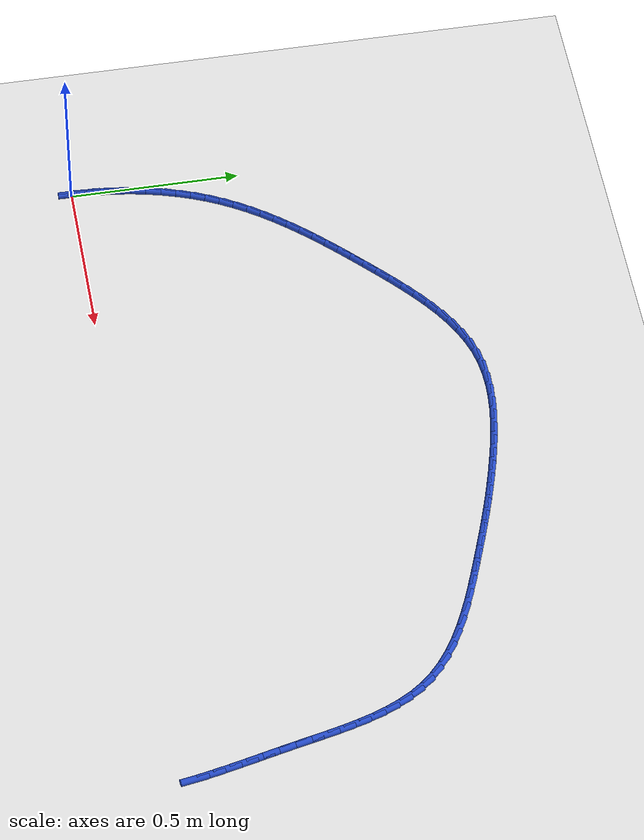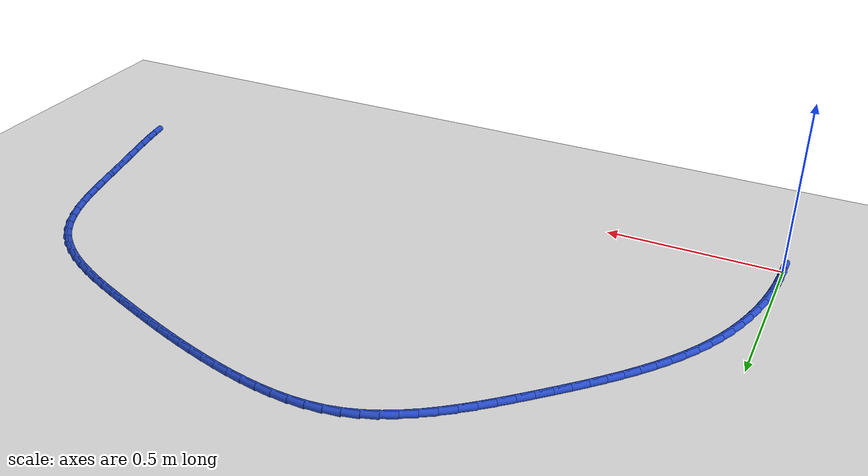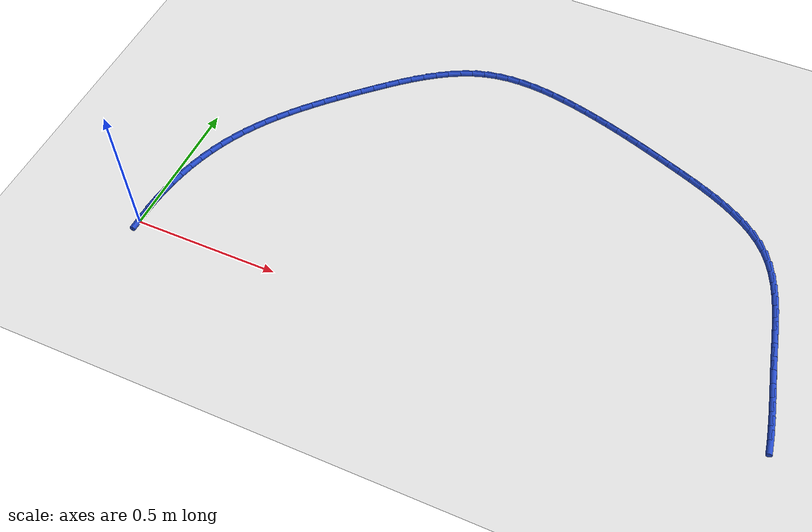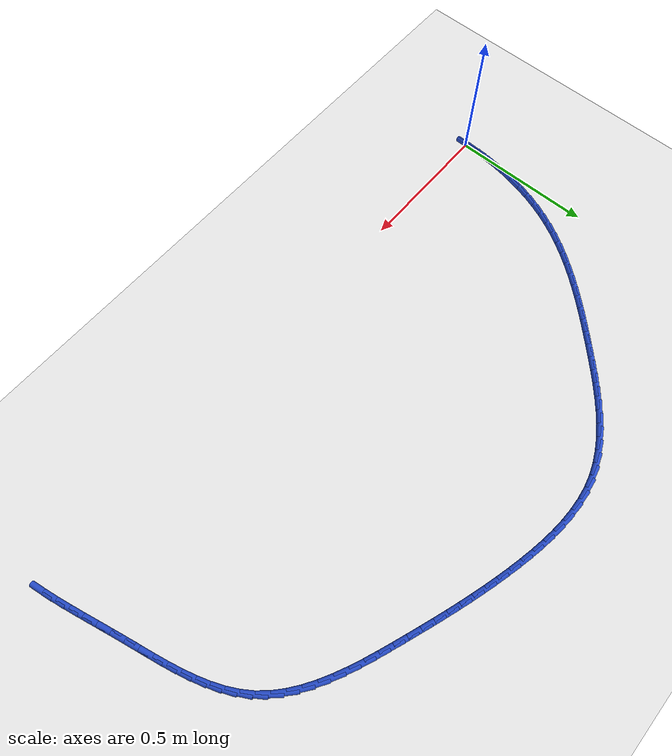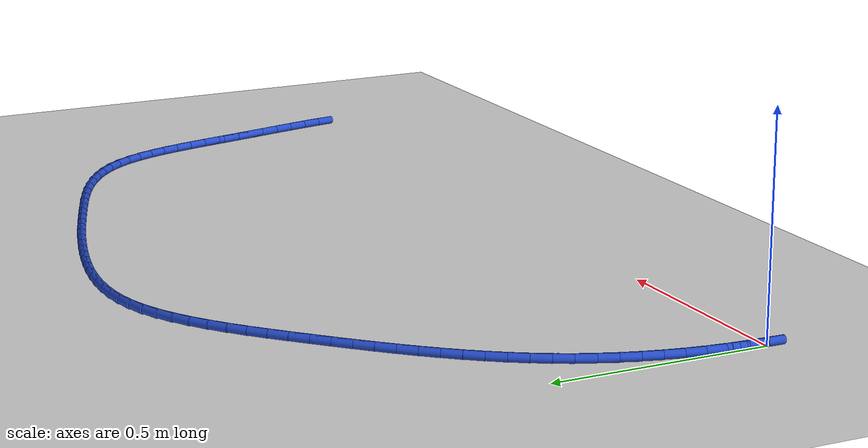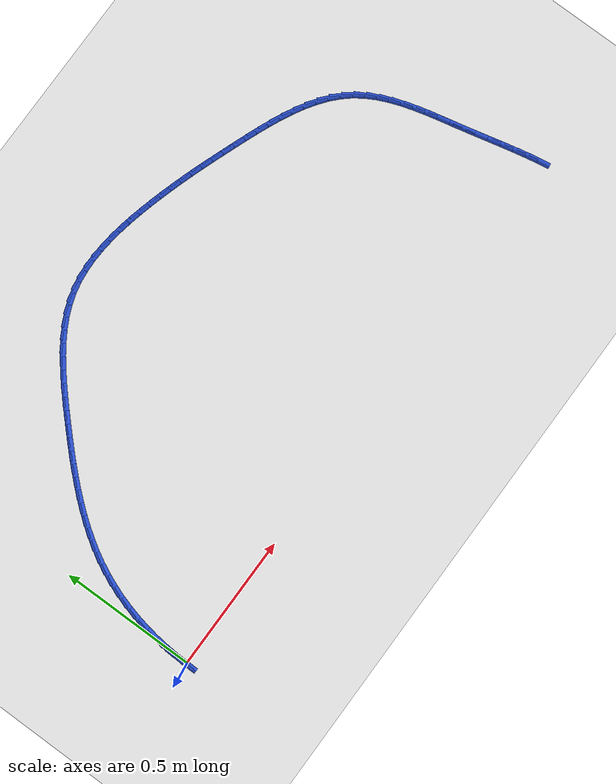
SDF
<sdf version="1.6">
 <world name="default">
  <model name="ground_plane">
   <static>1</static>
   <link name="link">
    <collision name="collision">
     <geometry><plane><normal>0 0 1</normal><size>100 100</size></plane></geometry>
     <surface><friction><ode><mu>100</mu><mu2>50</mu2></ode></friction></surface>
    </collision>
    <visual name="visual">
     <cast_shadows>0</cast_shadows>
     <geometry><plane><normal>0 0 1</normal><size>100 100</size></plane></geometry>
     <material>
      <script><uri>file://media/materials/scripts/gazebo.material</uri><name>Gazebo/WhiteGlow</name></script>
     </material>
    </visual>
   </link>
  </model>
  <model name="line">
   <link name="link_0">
    <pose>-3.9898639947466563e-17 1.3877787807814457e-16 0.01 0 1.57 1.5505726882024928</pose>
    <collision name="collision">
     <geometry><cylinder><radius>0.01</radius><length>0.08</length></cylinder></geometry>
    </collision>
    <visual name="visual">
     <material>
      <script><name>Gazebo/Blue</name><uri>file://media/materials/scripts/gazebo.material</uri></script>
     </material>
     <geometry><cylinder><radius>0.01</radius><length>0.08</length></cylinder></geometry>
    </visual>
   </link>
   <link name="link_1">
    <pose>0.0009206554277849331 0.04551752176031066 0.01 0 1.57 1.5070919290253075</pose>
    <collision name="collision">
     <geometry><cylinder><radius>0.01</radius><length>0.08</length></cylinder></geometry>
    </collision>
    <visual name="visual">
     <material>
      <script><name>Gazebo/Blue</name><uri>file://media/materials/scripts/gazebo.material</uri></script>
     </material>
     <geometry><cylinder><radius>0.01</radius><length>0.08</length></cylinder></geometry>
    </visual>
   </link>
   <link name="link_2">
    <pose>0.0038193526490129426 0.09095826130630526 0.01 0 1.57 1.4629954658828586</pose>
    <collision name="collision">
     <geometry><cylinder><radius>0.01</radius><length>0.08</length></cylinder></geometry>
    </collision>
    <visual name="visual">
     <material>
      <script><name>Gazebo/Blue</name><uri>file://media/materials/scripts/gazebo.material</uri></script>
     </material>
     <geometry><cylinder><radius>0.01</radius><length>0.08</length></cylinder></geometry>
    </visual>
   </link>
   <link name="link_3">
    <pose>0.00871308299222229 0.13617829830201303 0.01 0 1.57 1.4180398101255904</pose>
    <collision name="collision">
     <geometry><cylinder><radius>0.01</radius><length>0.08</length></cylinder></geometry>
    </collision>
    <visual name="visual">
     <material>
      <script><name>Gazebo/Blue</name><uri>file://media/materials/scripts/gazebo.material</uri></script>
     </material>
     <geometry><cylinder><radius>0.01</radius><length>0.08</length></cylinder></geometry>
    </visual>
   </link>
   <link name="link_4">
    <pose>0.01561883778595127 0.18103371241146296 0.01 0 1.57 1.3719832310797913</pose>
    <collision name="collision">
     <geometry><cylinder><radius>0.01</radius><length>0.08</length></cylinder></geometry>
    </collision>
    <visual name="visual">
     <material>
      <script><name>Gazebo/Blue</name><uri>file://media/materials/scripts/gazebo.material</uri></script>
     </material>
     <geometry><cylinder><radius>0.01</radius><length>0.08</length></cylinder></geometry>
    </visual>
   </link>
   <link name="link_5">
    <pose>0.024553608358738183 0.22538058329868402 0.01 0 1.57 1.3245864769850098</pose>
    <collision name="collision">
     <geometry><cylinder><radius>0.01</radius><length>0.08</length></cylinder></geometry>
    </collision>
    <visual name="visual">
     <material>
      <script><name>Gazebo/Blue</name><uri>file://media/materials/scripts/gazebo.material</uri></script>
     </material>
     <geometry><cylinder><radius>0.01</radius><length>0.08</length></cylinder></geometry>
    </visual>
   </link>
   <link name="link_6">
    <pose>0.035534386039121325 0.26907499062770524 0.01 0 1.57 1.2756146023325243</pose>
    <collision name="collision">
     <geometry><cylinder><radius>0.01</radius><length>0.08</length></cylinder></geometry>
    </collision>
    <visual name="visual">
     <material>
      <script><name>Gazebo/Blue</name><uri>file://media/materials/scripts/gazebo.material</uri></script>
     </material>
     <geometry><cylinder><radius>0.01</radius><length>0.08</length></cylinder></geometry>
    </visual>
   </link>
   <link name="link_7">
    <pose>0.04857816215563901 0.31197301406255573 0.01 0 1.57 1.2248401965241404</pose>
    <collision name="collision">
     <geometry><cylinder><radius>0.01</radius><length>0.08</length></cylinder></geometry>
    </collision>
    <visual name="visual">
     <material>
      <script><name>Gazebo/Blue</name><uri>file://media/materials/scripts/gazebo.material</uri></script>
     </material>
     <geometry><cylinder><radius>0.01</radius><length>0.08</length></cylinder></geometry>
    </visual>
   </link>
   <link name="link_8">
    <pose>0.06370192803682953 0.35393073326726443 0.01 0 1.57 1.1720483300698943</pose>
    <collision name="collision">
     <geometry><cylinder><radius>0.01</radius><length>0.08</length></cylinder></geometry>
    </collision>
    <visual name="visual">
     <material>
      <script><name>Gazebo/Blue</name><uri>file://media/materials/scripts/gazebo.material</uri></script>
     </material>
     <geometry><cylinder><radius>0.01</radius><length>0.08</length></cylinder></geometry>
    </visual>
   </link>
   <link name="link_9">
    <pose>0.08092267501123115 0.3948042279058602 0.01 0 1.57 1.1173778302438921</pose>
    <collision name="collision">
     <geometry><cylinder><radius>0.01</radius><length>0.08</length></cylinder></geometry>
    </collision>
    <visual name="visual">
     <material>
      <script><name>Gazebo/Blue</name><uri>file://media/materials/scripts/gazebo.material</uri></script>
     </material>
     <geometry><cylinder><radius>0.01</radius><length>0.08</length></cylinder></geometry>
    </visual>
   </link>
   <link name="link_10">
    <pose>0.10024797308178825 0.43446390651374334 0.01 0 1.57 1.0642409342038408</pose>
    <collision name="collision">
     <geometry><cylinder><radius>0.01</radius><length>0.08</length></cylinder></geometry>
    </collision>
    <visual name="visual">
     <material>
      <script><name>Gazebo/Blue</name><uri>file://media/materials/scripts/gazebo.material</uri></script>
     </material>
     <geometry><cylinder><radius>0.01</radius><length>0.08</length></cylinder></geometry>
    </visual>
   </link>
   <link name="link_11">
    <pose>0.12158894984292902 0.472926856652802 0.01 0 1.57 1.014983260659657</pose>
    <collision name="collision">
     <geometry><cylinder><radius>0.01</radius><length>0.08</length></cylinder></geometry>
    </collision>
    <visual name="visual">
     <material>
      <script><name>Gazebo/Blue</name><uri>file://media/materials/scripts/gazebo.material</uri></script>
     </material>
     <geometry><cylinder><radius>0.01</radius><length>0.08</length></cylinder></geometry>
    </visual>
   </link>
   <link name="link_12">
    <pose>0.1448002078739327 0.5102961346441228 0.01 0 1.57 0.9699224637296748</pose>
    <collision name="collision">
     <geometry><cylinder><radius>0.01</radius><length>0.08</length></cylinder></geometry>
    </collision>
    <visual name="visual">
     <material>
      <script><name>Gazebo/Blue</name><uri>file://media/materials/scripts/gazebo.material</uri></script>
     </material>
     <geometry><cylinder><radius>0.01</radius><length>0.08</length></cylinder></geometry>
    </visual>
   </link>
   <link name="link_13">
    <pose>0.16973563342055176 0.5466758862787258 0.01 0 1.57 0.9292327381509493</pose>
    <collision name="collision">
     <geometry><cylinder><radius>0.01</radius><length>0.08</length></cylinder></geometry>
    </collision>
    <visual name="visual">
     <material>
      <script><name>Gazebo/Blue</name><uri>file://media/materials/scripts/gazebo.material</uri></script>
     </material>
     <geometry><cylinder><radius>0.01</radius><length>0.08</length></cylinder></geometry>
    </visual>
   </link>
   <link name="link_14">
    <pose>0.1962491127285387 0.5821702573476304 0.01 0 1.57 0.8929905282355495</pose>
    <collision name="collision">
     <geometry><cylinder><radius>0.01</radius><length>0.08</length></cylinder></geometry>
    </collision>
    <visual name="visual">
     <material>
      <script><name>Gazebo/Blue</name><uri>file://media/materials/scripts/gazebo.material</uri></script>
     </material>
     <geometry><cylinder><radius>0.01</radius><length>0.08</length></cylinder></geometry>
    </visual>
   </link>
   <link name="link_15">
    <pose>0.22419453204364614 0.6168833936418564 0.01 0 1.57 0.8611971430155317</pose>
    <collision name="collision">
     <geometry><cylinder><radius>0.01</radius><length>0.08</length></cylinder></geometry>
    </collision>
    <visual name="visual">
     <material>
      <script><name>Gazebo/Blue</name><uri>file://media/materials/scripts/gazebo.material</uri></script>
     </material>
     <geometry><cylinder><radius>0.01</radius><length>0.08</length></cylinder></geometry>
    </visual>
   </link>
   <link name="link_16">
    <pose>0.25342577761162655 0.6509194409524238 0.01 0 1.57 0.8338007058977134</pose>
    <collision name="collision">
     <geometry><cylinder><radius>0.01</radius><length>0.08</length></cylinder></geometry>
    </collision>
    <visual name="visual">
     <material>
      <script><name>Gazebo/Blue</name><uri>file://media/materials/scripts/gazebo.material</uri></script>
     </material>
     <geometry><cylinder><radius>0.01</radius><length>0.08</length></cylinder></geometry>
    </visual>
   </link>
   <link name="link_17">
    <pose>0.2837967356782323 0.684382545070352 0.01 0 1.57 0.8107156036488731</pose>
    <collision name="collision">
     <geometry><cylinder><radius>0.01</radius><length>0.08</length></cylinder></geometry>
    </collision>
    <visual name="visual">
     <material>
      <script><name>Gazebo/Blue</name><uri>file://media/materials/scripts/gazebo.material</uri></script>
     </material>
     <geometry><cylinder><radius>0.01</radius><length>0.08</length></cylinder></geometry>
    </visual>
   </link>
   <link name="link_18">
    <pose>0.3151612924892162 0.7173768517866611 0.01 0 1.57 0.79183857983386</pose>
    <collision name="collision">
     <geometry><cylinder><radius>0.01</radius><length>0.08</length></cylinder></geometry>
    </collision>
    <visual name="visual">
     <material>
      <script><name>Gazebo/Blue</name><uri>file://media/materials/scripts/gazebo.material</uri></script>
     </material>
     <geometry><cylinder><radius>0.01</radius><length>0.08</length></cylinder></geometry>
    </visual>
   </link>
   <link name="link_19">
    <pose>0.34737333429033057 0.7500065068923707 0.01 0 1.57 0.777061310153667</pose>
    <collision name="collision">
     <geometry><cylinder><radius>0.01</radius><length>0.08</length></cylinder></geometry>
    </collision>
    <visual name="visual">
     <material>
      <script><name>Gazebo/Blue</name><uri>file://media/materials/scripts/gazebo.material</uri></script>
     </material>
     <geometry><cylinder><radius>0.01</radius><length>0.08</length></cylinder></geometry>
    </visual>
   </link>
   <link name="link_20">
    <pose>0.38028674732732776 0.7823756561785002 0.01 0 1.57 0.7662797052062409</pose>
    <collision name="collision">
     <geometry><cylinder><radius>0.01</radius><length>0.08</length></cylinder></geometry>
    </collision>
    <visual name="visual">
     <material>
      <script><name>Gazebo/Blue</name><uri>file://media/materials/scripts/gazebo.material</uri></script>
     </material>
     <geometry><cylinder><radius>0.01</radius><length>0.08</length></cylinder></geometry>
    </visual>
   </link>
   <link name="link_21">
    <pose>0.4137554178459606 0.8145884454360701 0.01 0 1.57 0.7586854684292571</pose>
    <collision name="collision">
     <geometry><cylinder><radius>0.01</radius><length>0.08</length></cylinder></geometry>
    </collision>
    <visual name="visual">
     <material>
      <script><name>Gazebo/Blue</name><uri>file://media/materials/scripts/gazebo.material</uri></script>
     </material>
     <geometry><cylinder><radius>0.01</radius><length>0.08</length></cylinder></geometry>
    </visual>
   </link>
   <link name="link_22">
    <pose>0.44764758871385396 0.8467166154773756 0.01 0 1.57 0.747073268192079</pose>
    <collision name="collision">
     <geometry><cylinder><radius>0.01</radius><length>0.08</length></cylinder></geometry>
    </collision>
    <visual name="visual">
     <material>
      <script><name>Gazebo/Blue</name><uri>file://media/materials/scripts/gazebo.material</uri></script>
     </material>
     <geometry><cylinder><radius>0.01</radius><length>0.08</length></cylinder></geometry>
    </visual>
   </link>
   <link name="link_23">
    <pose>0.48197476527166083 0.8785085429255888 0.01 0 1.57 0.7272052929547193</pose>
    <collision name="collision">
     <geometry><cylinder><radius>0.01</radius><length>0.08</length></cylinder></geometry>
    </collision>
    <visual name="visual">
     <material>
      <script><name>Gazebo/Blue</name><uri>file://media/materials/scripts/gazebo.material</uri></script>
     </material>
     <geometry><cylinder><radius>0.01</radius><length>0.08</length></cylinder></geometry>
    </visual>
   </link>
   <link name="link_24">
    <pose>0.5168307701794242 0.9095268022697054 0.01 0 1.57 0.6986937696179193</pose>
    <collision name="collision">
     <geometry><cylinder><radius>0.01</radius><length>0.08</length></cylinder></geometry>
    </collision>
    <visual name="visual">
     <material>
      <script><name>Gazebo/Blue</name><uri>file://media/materials/scripts/gazebo.material</uri></script>
     </material>
     <geometry><cylinder><radius>0.01</radius><length>0.08</length></cylinder></geometry>
    </visual>
   </link>
   <link name="link_25">
    <pose>0.5523104078257103 0.9393317520949986 0.01 0 1.57 0.6610077217699959</pose>
    <collision name="collision">
     <geometry><cylinder><radius>0.01</radius><length>0.08</length></cylinder></geometry>
    </collision>
    <visual name="visual">
     <material>
      <script><name>Gazebo/Blue</name><uri>file://media/materials/scripts/gazebo.material</uri></script>
     </material>
     <geometry><cylinder><radius>0.01</radius><length>0.08</length></cylinder></geometry>
    </visual>
   </link>
   <link name="link_26">
    <pose>0.5885084825990841 0.9674837509867407 0.01 0 1.57 0.613467626079441</pose>
    <collision name="collision">
     <geometry><cylinder><radius>0.01</radius><length>0.08</length></cylinder></geometry>
    </collision>
    <visual name="visual">
     <material>
      <script><name>Gazebo/Blue</name><uri>file://media/materials/scripts/gazebo.material</uri></script>
     </material>
     <geometry><cylinder><radius>0.01</radius><length>0.08</length></cylinder></geometry>
    </visual>
   </link>
   <link name="link_27">
    <pose>0.6255197988881115 0.9935431575302046 0.01 0 1.57 0.5553227023812817</pose>
    <collision name="collision">
     <geometry><cylinder><radius>0.01</radius><length>0.08</length></cylinder></geometry>
    </collision>
    <visual name="visual">
     <material>
      <script><name>Gazebo/Blue</name><uri>file://media/materials/scripts/gazebo.material</uri></script>
     </material>
     <geometry><cylinder><radius>0.01</radius><length>0.08</length></cylinder></geometry>
    </visual>
   </link>
   <link name="link_28">
    <pose>0.663439161081358 1.0170703303106625 0.01 0 1.57 0.4858836679442088</pose>
    <collision name="collision">
     <geometry><cylinder><radius>0.01</radius><length>0.08</length></cylinder></geometry>
    </collision>
    <visual name="visual">
     <material>
      <script><name>Gazebo/Blue</name><uri>file://media/materials/scripts/gazebo.material</uri></script>
     </material>
     <geometry><cylinder><radius>0.01</radius><length>0.08</length></cylinder></geometry>
    </visual>
   </link>
   <link name="link_29">
    <pose>0.7023613735673893 1.037625627913387 0.01 0 1.57 0.4047315354673868</pose>
    <collision name="collision">
     <geometry><cylinder><radius>0.01</radius><length>0.08</length></cylinder></geometry>
    </collision>
    <visual name="visual">
     <material>
      <script><name>Gazebo/Blue</name><uri>file://media/materials/scripts/gazebo.material</uri></script>
     </material>
     <geometry><cylinder><radius>0.01</radius><length>0.08</length></cylinder></geometry>
    </visual>
   </link>
   <link name="link_30">
    <pose>0.742381240734771 1.0547694089236515 0.01 0 1.57 0.31200529138153793</pose>
    <collision name="collision">
     <geometry><cylinder><radius>0.01</radius><length>0.08</length></cylinder></geometry>
    </collision>
    <visual name="visual">
     <material>
      <script><name>Gazebo/Blue</name><uri>file://media/materials/scripts/gazebo.material</uri></script>
     </material>
     <geometry><cylinder><radius>0.01</radius><length>0.08</length></cylinder></geometry>
    </visual>
   </link>
   <link name="link_31">
    <pose>0.7835935669720688 1.068062031926728 0.01 0 1.57 0.21057127380969712</pose>
    <collision name="collision">
     <geometry><cylinder><radius>0.01</radius><length>0.08</length></cylinder></geometry>
    </collision>
    <visual name="visual">
     <material>
      <script><name>Gazebo/Blue</name><uri>file://media/materials/scripts/gazebo.material</uri></script>
     </material>
     <geometry><cylinder><radius>0.01</radius><length>0.08</length></cylinder></geometry>
    </visual>
   </link>
   <link name="link_32">
    <pose>0.8260629283394837 1.0771394223441038 0.01 0 1.57 0.11527960182350401</pose>
    <collision name="collision">
     <geometry><cylinder><radius>0.01</radius><length>0.08</length></cylinder></geometry>
    </collision>
    <visual name="visual">
     <material>
      <script><name>Gazebo/Blue</name><uri>file://media/materials/scripts/gazebo.material</uri></script>
     </material>
     <geometry><cylinder><radius>0.01</radius><length>0.08</length></cylinder></geometry>
    </visual>
   </link>
   <link name="link_33">
    <pose>0.8696349869689265 1.082184761560779 0.01 0 1.57 0.03234563083166852</pose>
    <collision name="collision">
     <geometry><cylinder><radius>0.01</radius><length>0.08</length></cylinder></geometry>
    </collision>
    <visual name="visual">
     <material>
      <script><name>Gazebo/Blue</name><uri>file://media/materials/scripts/gazebo.material</uri></script>
     </material>
     <geometry><cylinder><radius>0.01</radius><length>0.08</length></cylinder></geometry>
    </visual>
   </link>
   <link name="link_34">
    <pose>0.9140590178168781 1.08362218619458 0.01 0 1.57 -0.03874377640687195</pose>
    <collision name="collision">
     <geometry><cylinder><radius>0.01</radius><length>0.08</length></cylinder></geometry>
    </collision>
    <visual name="visual">
     <material>
      <script><name>Gazebo/Blue</name><uri>file://media/materials/scripts/gazebo.material</uri></script>
     </material>
     <geometry><cylinder><radius>0.01</radius><length>0.08</length></cylinder></geometry>
    </visual>
   </link>
   <link name="link_35">
    <pose>0.9590838770646416 1.0818768797460734 0.01 0 1.57 -0.0989135957534797</pose>
    <collision name="collision">
     <geometry><cylinder><radius>0.01</radius><length>0.08</length></cylinder></geometry>
    </collision>
    <visual name="visual">
     <material>
      <script><name>Gazebo/Blue</name><uri>file://media/materials/scripts/gazebo.material</uri></script>
     </material>
     <geometry><cylinder><radius>0.01</radius><length>0.08</length></cylinder></geometry>
    </visual>
   </link>
   <link name="link_36">
    <pose>1.0044584208935206 1.0773740257158255 0.01 0 1.57 -0.1491965265950681</pose>
    <collision name="collision">
     <geometry><cylinder><radius>0.01</radius><length>0.08</length></cylinder></geometry>
    </collision>
    <visual name="visual">
     <material>
      <script><name>Gazebo/Blue</name><uri>file://media/materials/scripts/gazebo.material</uri></script>
     </material>
     <geometry><cylinder><radius>0.01</radius><length>0.08</length></cylinder></geometry>
    </visual>
   </link>
   <link name="link_37">
    <pose>1.0499315054848184 1.0705388076044042 0.01 0 1.57 -0.19056106430571415</pose>
    <collision name="collision">
     <geometry><cylinder><radius>0.01</radius><length>0.08</length></cylinder></geometry>
    </collision>
    <visual name="visual">
     <material>
      <script><name>Gazebo/Blue</name><uri>file://media/materials/scripts/gazebo.material</uri></script>
     </material>
     <geometry><cylinder><radius>0.01</radius><length>0.08</length></cylinder></geometry>
    </visual>
   </link>
   <link name="link_38">
    <pose>1.0952519870198383 1.0617964089123748 0.01 0 1.57 -0.2238162884499599</pose>
    <collision name="collision">
     <geometry><cylinder><radius>0.01</radius><length>0.08</length></cylinder></geometry>
    </collision>
    <visual name="visual">
     <material>
      <script><name>Gazebo/Blue</name><uri>file://media/materials/scripts/gazebo.material</uri></script>
     </material>
     <geometry><cylinder><radius>0.01</radius><length>0.08</length></cylinder></geometry>
    </visual>
   </link>
   <link name="link_39">
    <pose>1.1401687216798835 1.0515720131403048 0.01 0 1.57 -0.2495638884591143</pose>
    <collision name="collision">
     <geometry><cylinder><radius>0.01</radius><length>0.08</length></cylinder></geometry>
    </collision>
    <visual name="visual">
     <material>
      <script><name>Gazebo/Blue</name><uri>file://media/materials/scripts/gazebo.material</uri></script>
     </material>
     <geometry><cylinder><radius>0.01</radius><length>0.08</length></cylinder></geometry>
    </visual>
   </link>
   <link name="link_40">
    <pose>1.1844307703886015 1.0402906160462495 0.01 0 1.57 -0.2696163956781835</pose>
    <collision name="collision">
     <geometry><cylinder><radius>0.01</radius><length>0.08</length></cylinder></geometry>
    </collision>
    <visual name="visual">
     <material>
      <script><name>Gazebo/Blue</name><uri>file://media/materials/scripts/gazebo.material</uri></script>
     </material>
     <geometry><cylinder><radius>0.01</radius><length>0.08</length></cylinder></geometry>
    </visual>
   </link>
   <link name="link_41">
    <pose>1.2278932415698285 1.0282799710518098 0.01 0 1.57 -0.28778578197098575</pose>
    <collision name="collision">
     <geometry><cylinder><radius>0.01</radius><length>0.08</length></cylinder></geometry>
    </collision>
    <visual name="visual">
     <material>
      <script><name>Gazebo/Blue</name><uri>file://media/materials/scripts/gazebo.material</uri></script>
     </material>
     <geometry><cylinder><radius>0.01</radius><length>0.08</length></cylinder></geometry>
    </visual>
   </link>
   <link name="link_42">
    <pose>1.2706903502010494 1.0156118993468124 0.01 0 1.57 -0.3044557159259365</pose>
    <collision name="collision">
     <geometry><cylinder><radius>0.01</radius><length>0.08</length></cylinder></geometry>
    </collision>
    <visual name="visual">
     <material>
      <script><name>Gazebo/Blue</name><uri>file://media/materials/scripts/gazebo.material</uri></script>
     </material>
     <geometry><cylinder><radius>0.01</radius><length>0.08</length></cylinder></geometry>
    </visual>
   </link>
   <link name="link_43">
    <pose>1.313001684657963 1.0023166160931496 0.01 0 1.57 -0.31940394249271786</pose>
    <collision name="collision">
     <geometry><cylinder><radius>0.01</radius><length>0.08</length></cylinder></geometry>
    </collision>
    <visual name="visual">
     <material>
      <script><name>Gazebo/Blue</name><uri>file://media/materials/scripts/gazebo.material</uri></script>
     </material>
     <geometry><cylinder><radius>0.01</radius><length>0.08</length></cylinder></geometry>
    </visual>
   </link>
   <link name="link_44">
    <pose>1.3550068333162675 0.9884243364527155 0.01 0 1.57 -0.33244741905310193</pose>
    <collision name="collision">
     <geometry><cylinder><radius>0.01</radius><length>0.08</length></cylinder></geometry>
    </collision>
    <visual name="visual">
     <material>
      <script><name>Gazebo/Blue</name><uri>file://media/materials/scripts/gazebo.material</uri></script>
     </material>
     <geometry><cylinder><radius>0.01</radius><length>0.08</length></cylinder></geometry>
    </visual>
   </link>
   <link name="link_45">
    <pose>1.3968853845516613 0.9739652755874015 0.01 0 1.57 -0.3434484988253575</pose>
    <collision name="collision">
     <geometry><cylinder><radius>0.01</radius><length>0.08</length></cylinder></geometry>
    </collision>
    <visual name="visual">
     <material>
      <script><name>Gazebo/Blue</name><uri>file://media/materials/scripts/gazebo.material</uri></script>
     </material>
     <geometry><cylinder><radius>0.01</radius><length>0.08</length></cylinder></geometry>
    </visual>
   </link>
   <link name="link_46">
    <pose>1.438816926739843 0.958969648659101 0.01 0 1.57 -0.3523183889713917</pose>
    <collision name="collision">
     <geometry><cylinder><radius>0.01</radius><length>0.08</length></cylinder></geometry>
    </collision>
    <visual name="visual">
     <material>
      <script><name>Gazebo/Blue</name><uri>file://media/materials/scripts/gazebo.material</uri></script>
     </material>
     <geometry><cylinder><radius>0.01</radius><length>0.08</length></cylinder></geometry>
    </visual>
   </link>
   <link name="link_47">
    <pose>1.4809810482565113 0.9434676708297068 0.01 0 1.57 -0.35901785134265835</pose>
    <collision name="collision">
     <geometry><cylinder><radius>0.01</radius><length>0.08</length></cylinder></geometry>
    </collision>
    <visual name="visual">
     <material>
      <script><name>Gazebo/Blue</name><uri>file://media/materials/scripts/gazebo.material</uri></script>
     </material>
     <geometry><cylinder><radius>0.01</radius><length>0.08</length></cylinder></geometry>
    </visual>
   </link>
   <link name="link_48">
    <pose>1.523557337477364 0.9274895572611118 0.01 0 1.57 -0.3642870130882982</pose>
    <collision name="collision">
     <geometry><cylinder><radius>0.01</radius><length>0.08</length></cylinder></geometry>
    </collision>
    <visual name="visual">
     <material>
      <script><name>Gazebo/Blue</name><uri>file://media/materials/scripts/gazebo.material</uri></script>
     </material>
     <geometry><cylinder><radius>0.01</radius><length>0.08</length></cylinder></geometry>
    </visual>
   </link>
   <link name="link_49">
    <pose>1.566681952457323 0.9110459179435783 0.01 0 1.57 -0.37493434596219144</pose>
    <collision name="collision">
     <geometry><cylinder><radius>0.01</radius><length>0.08</length></cylinder></geometry>
    </collision>
    <visual name="visual">
     <material>
      <script><name>Gazebo/Blue</name><uri>file://media/materials/scripts/gazebo.material</uri></script>
     </material>
     <geometry><cylinder><radius>0.01</radius><length>0.08</length></cylinder></geometry>
    </visual>
   </link>
   <link name="link_50">
    <pose>1.6100856525923446 0.8939643591467991 0.01 0 1.57 -0.394686479308191</pose>
    <collision name="collision">
     <geometry><cylinder><radius>0.01</radius><length>0.08</length></cylinder></geometry>
    </collision>
    <visual name="visual">
     <material>
      <script><name>Gazebo/Blue</name><uri>file://media/materials/scripts/gazebo.material</uri></script>
     </material>
     <geometry><cylinder><radius>0.01</radius><length>0.08</length></cylinder></geometry>
    </visual>
   </link>
   <link name="link_51">
    <pose>1.6532782498113927 0.8759727477663592 0.01 0 1.57 -0.42392427258061693</pose>
    <collision name="collision">
     <geometry><cylinder><radius>0.01</radius><length>0.08</length></cylinder></geometry>
    </collision>
    <visual name="visual">
     <material>
      <script><name>Gazebo/Blue</name><uri>file://media/materials/scripts/gazebo.material</uri></script>
     </material>
     <geometry><cylinder><radius>0.01</radius><length>0.08</length></cylinder></geometry>
    </visual>
   </link>
   <link name="link_52">
    <pose>1.695767332375506 0.8567979468970287 0.01 0 1.57 -0.46334822507391676</pose>
    <collision name="collision">
     <geometry><cylinder><radius>0.01</radius><length>0.08</length></cylinder></geometry>
    </collision>
    <visual name="visual">
     <material>
      <script><name>Gazebo/Blue</name><uri>file://media/materials/scripts/gazebo.material</uri></script>
     </material>
     <geometry><cylinder><radius>0.01</radius><length>0.08</length></cylinder></geometry>
    </visual>
   </link>
   <link name="link_53">
    <pose>1.7370604885457226 0.8361668196335781 0.01 0 1.57 -0.5139777343200697</pose>
    <collision name="collision">
     <geometry><cylinder><radius>0.01</radius><length>0.08</length></cylinder></geometry>
    </collision>
    <visual name="visual">
     <material>
      <script><name>Gazebo/Blue</name><uri>file://media/materials/scripts/gazebo.material</uri></script>
     </material>
     <geometry><cylinder><radius>0.01</radius><length>0.08</length></cylinder></geometry>
    </visual>
   </link>
   <link name="link_54">
    <pose>1.776665306583079 0.8138062290707766 0.01 0 1.57 -0.57708018404111</pose>
    <collision name="collision">
     <geometry><cylinder><radius>0.01</radius><length>0.08</length></cylinder></geometry>
    </collision>
    <visual name="visual">
     <material>
      <script><name>Gazebo/Blue</name><uri>file://media/materials/scripts/gazebo.material</uri></script>
     </material>
     <geometry><cylinder><radius>0.01</radius><length>0.08</length></cylinder></geometry>
    </visual>
   </link>
   <link name="link_55">
    <pose>1.8140893747486138 0.7894430383033955 0.01 0 1.57 -0.6540204884061762</pose>
    <collision name="collision">
     <geometry><cylinder><radius>0.01</radius><length>0.08</length></cylinder></geometry>
    </collision>
    <visual name="visual">
     <material>
      <script><name>Gazebo/Blue</name><uri>file://media/materials/scripts/gazebo.material</uri></script>
     </material>
     <geometry><cylinder><radius>0.01</radius><length>0.08</length></cylinder></geometry>
    </visual>
   </link>
   <link name="link_56">
    <pose>1.8488402813033646 0.7628041104262046 0.01 0 1.57 -0.7459680981970288</pose>
    <collision name="collision">
     <geometry><cylinder><radius>0.01</radius><length>0.08</length></cylinder></geometry>
    </collision>
    <visual name="visual">
     <material>
      <script><name>Gazebo/Blue</name><uri>file://media/materials/scripts/gazebo.material</uri></script>
     </material>
     <geometry><cylinder><radius>0.01</radius><length>0.08</length></cylinder></geometry>
    </visual>
   </link>
   <link name="link_57">
    <pose>1.8804256145083689 0.7336163085339739 0.01 0 1.57 -0.8533517528467636</pose>
    <collision name="collision">
     <geometry><cylinder><radius>0.01</radius><length>0.08</length></cylinder></geometry>
    </collision>
    <visual name="visual">
     <material>
      <script><name>Gazebo/Blue</name><uri>file://media/materials/scripts/gazebo.material</uri></script>
     </material>
     <geometry><cylinder><radius>0.01</radius><length>0.08</length></cylinder></geometry>
    </visual>
   </link>
   <link name="link_58">
    <pose>1.908354931866206 0.7016077140418595 0.01 0 1.57 -0.9670909521451104</pose>
    <collision name="collision">
     <geometry><cylinder><radius>0.01</radius><length>0.08</length></cylinder></geometry>
    </collision>
    <visual name="visual">
     <material>
      <script><name>Gazebo/Blue</name><uri>file://media/materials/scripts/gazebo.material</uri></script>
     </material>
     <geometry><cylinder><radius>0.01</radius><length>0.08</length></cylinder></geometry>
    </visual>
   </link>
   <link name="link_59">
    <pose>1.9324340558594766 0.666689700082842 0.01 0 1.57 -1.0679960847927985</pose>
    <collision name="collision">
     <geometry><cylinder><radius>0.01</radius><length>0.08</length></cylinder></geometry>
    </collision>
    <visual name="visual">
     <material>
      <script><name>Gazebo/Blue</name><uri>file://media/materials/scripts/gazebo.material</uri></script>
     </material>
     <geometry><cylinder><radius>0.01</radius><length>0.08</length></cylinder></geometry>
    </visual>
   </link>
   <link name="link_60">
    <pose>1.9530783715334596 0.6291507608699078 0.01 0 1.57 -1.1525725775517304</pose>
    <collision name="collision">
     <geometry><cylinder><radius>0.01</radius><length>0.08</length></cylinder></geometry>
    </collision>
    <visual name="visual">
     <material>
      <script><name>Gazebo/Blue</name><uri>file://media/materials/scripts/gazebo.material</uri></script>
     </material>
     <geometry><cylinder><radius>0.01</radius><length>0.08</length></cylinder></geometry>
    </visual>
   </link>
   <link name="link_61">
    <pose>1.970778316034172 0.5893258234697322 0.01 0 1.57 -1.2208686324024014</pose>
    <collision name="collision">
     <geometry><cylinder><radius>0.01</radius><length>0.08</length></cylinder></geometry>
    </collision>
    <visual name="visual">
     <material>
      <script><name>Gazebo/Blue</name><uri>file://media/materials/scripts/gazebo.material</uri></script>
     </material>
     <geometry><cylinder><radius>0.01</radius><length>0.08</length></cylinder></geometry>
    </visual>
   </link>
   <link name="link_62">
    <pose>1.9860243265076305 0.54754981494899 0.01 0 1.57 -1.2737489380996596</pose>
    <collision name="collision">
     <geometry><cylinder><radius>0.01</radius><length>0.08</length></cylinder></geometry>
    </collision>
    <visual name="visual">
     <material>
      <script><name>Gazebo/Blue</name><uri>file://media/materials/scripts/gazebo.material</uri></script>
     </material>
     <geometry><cylinder><radius>0.01</radius><length>0.08</length></cylinder></geometry>
    </visual>
   </link>
   <link name="link_63">
    <pose>1.9993068400998517 0.5041576623743579 0.01 0 1.57 -1.3123570258026274</pose>
    <collision name="collision">
     <geometry><cylinder><radius>0.01</radius><length>0.08</length></cylinder></geometry>
    </collision>
    <visual name="visual">
     <material>
      <script><name>Gazebo/Blue</name><uri>file://media/materials/scripts/gazebo.material</uri></script>
     </material>
     <geometry><cylinder><radius>0.01</radius><length>0.08</length></cylinder></geometry>
    </visual>
   </link>
   <link name="link_64">
    <pose>2.011116293956853 0.45948429281251096 0.01 0 1.57 -1.3377791675958628</pose>
    <collision name="collision">
     <geometry><cylinder><radius>0.01</radius><length>0.08</length></cylinder></geometry>
    </collision>
    <visual name="visual">
     <material>
      <script><name>Gazebo/Blue</name><uri>file://media/materials/scripts/gazebo.material</uri></script>
     </material>
     <geometry><cylinder><radius>0.01</radius><length>0.08</length></cylinder></geometry>
    </visual>
   </link>
   <link name="link_65">
    <pose>2.021943125224651 0.4138646333301245 0.01 0 1.57 -1.3508686073525271</pose>
    <collision name="collision">
     <geometry><cylinder><radius>0.01</radius><length>0.08</length></cylinder></geometry>
    </collision>
    <visual name="visual">
     <material>
      <script><name>Gazebo/Blue</name><uri>file://media/materials/scripts/gazebo.material</uri></script>
     </material>
     <geometry><cylinder><radius>0.01</radius><length>0.08</length></cylinder></geometry>
    </visual>
   </link>
   <link name="link_66">
    <pose>2.0322777710492623 0.3676336109938739 0.01 0 1.57 -1.3521702704656968</pose>
    <collision name="collision">
     <geometry><cylinder><radius>0.01</radius><length>0.08</length></cylinder></geometry>
    </collision>
    <visual name="visual">
     <material>
      <script><name>Gazebo/Blue</name><uri>file://media/materials/scripts/gazebo.material</uri></script>
     </material>
     <geometry><cylinder><radius>0.01</radius><length>0.08</length></cylinder></geometry>
    </visual>
   </link>
   <link name="link_67">
    <pose>2.0426106685767036 0.3211261528704345 0.01 0 1.57 -1.344513946417605</pose>
    <collision name="collision">
     <geometry><cylinder><radius>0.01</radius><length>0.08</length></cylinder></geometry>
    </collision>
    <visual name="visual">
     <material>
      <script><name>Gazebo/Blue</name><uri>file://media/materials/scripts/gazebo.material</uri></script>
     </material>
     <geometry><cylinder><radius>0.01</radius><length>0.08</length></cylinder></geometry>
    </visual>
   </link>
   <link name="link_68">
    <pose>2.0533141317297177 0.2746349025500666 0.01 0 1.57 -1.3395813190860317</pose>
    <collision name="collision">
     <geometry><cylinder><radius>0.01</radius><length>0.08</length></cylinder></geometry>
    </collision>
    <visual name="visual">
     <material>
      <script><name>Gazebo/Blue</name><uri>file://media/materials/scripts/gazebo.material</uri></script>
     </material>
     <geometry><cylinder><radius>0.01</radius><length>0.08</length></cylinder></geometry>
    </visual>
   </link>
   <link name="link_69">
    <pose>2.0642312392265945 0.22826305819760448 0.01 0 1.57 -1.3406379872564995</pose>
    <collision name="collision">
     <geometry><cylinder><radius>0.01</radius><length>0.08</length></cylinder></geometry>
    </collision>
    <visual name="visual">
     <material>
      <script><name>Gazebo/Blue</name><uri>file://media/materials/scripts/gazebo.material</uri></script>
     </material>
     <geometry><cylinder><radius>0.01</radius><length>0.08</length></cylinder></geometry>
    </visual>
   </link>
   <link name="link_70">
    <pose>2.0750569122004707 0.18206078337906312 0.01 0 1.57 -1.3477628396357368</pose>
    <collision name="collision">
     <geometry><cylinder><radius>0.01</radius><length>0.08</length></cylinder></geometry>
    </collision>
    <visual name="visual">
     <material>
      <script><name>Gazebo/Blue</name><uri>file://media/materials/scripts/gazebo.material</uri></script>
     </material>
     <geometry><cylinder><radius>0.01</radius><length>0.08</length></cylinder></geometry>
    </visual>
   </link>
   <link name="link_71">
    <pose>2.0854860646392206 0.13607823910273373 0.01 0 1.57 -1.361126144048252</pose>
    <collision name="collision">
     <geometry><cylinder><radius>0.01</radius><length>0.08</length></cylinder></geometry>
    </collision>
    <visual name="visual">
     <material>
      <script><name>Gazebo/Blue</name><uri>file://media/materials/scripts/gazebo.material</uri></script>
     </material>
     <geometry><cylinder><radius>0.01</radius><length>0.08</length></cylinder></geometry>
    </visual>
   </link>
   <link name="link_72">
    <pose>2.095213610530719 0.09036558637690878 0.01 0 1.57 -1.3809884703647464</pose>
    <collision name="collision">
     <geometry><cylinder><radius>0.01</radius><length>0.08</length></cylinder></geometry>
    </collision>
    <visual name="visual">
     <material>
      <script><name>Gazebo/Blue</name><uri>file://media/materials/scripts/gazebo.material</uri></script>
     </material>
     <geometry><cylinder><radius>0.01</radius><length>0.08</length></cylinder></geometry>
    </visual>
   </link>
   <link name="link_73">
    <pose>2.10393446386284 0.04497298620987952 0.01 0 1.57 -1.4076939500851235</pose>
    <collision name="collision">
     <geometry><cylinder><radius>0.01</radius><length>0.08</length></cylinder></geometry>
    </collision>
    <visual name="visual">
     <material>
      <script><name>Gazebo/Blue</name><uri>file://media/materials/scripts/gazebo.material</uri></script>
     </material>
     <geometry><cylinder><radius>0.01</radius><length>0.08</length></cylinder></geometry>
    </visual>
   </link>
   <link name="link_150">
    <pose>-5.0306980803327406e-17 2.0816681711721685e-16 0.01 0 1.57 1.5506684028339317</pose>
    <collision name="collision">
     <geometry><cylinder><radius>0.01</radius><length>0.08</length></cylinder></geometry>
    </collision>
    <visual name="visual">
     <material>
      <script><name>Gazebo/Blue</name><uri>file://media/materials/scripts/gazebo.material</uri></script>
     </material>
     <geometry><cylinder><radius>0.01</radius><length>0.08</length></cylinder></geometry>
    </visual>
   </link>
   <link name="link_151">
    <pose>0.0009164423250915717 0.04552474279436059 0.01 0 1.57 1.5506684028339321</pose>
    <collision name="collision">
     <geometry><cylinder><radius>0.01</radius><length>0.08</length></cylinder></geometry>
    </collision>
    <visual name="visual">
     <material>
      <script><name>Gazebo/Blue</name><uri>file://media/materials/scripts/gazebo.material</uri></script>
     </material>
     <geometry><cylinder><radius>0.01</radius><length>0.08</length></cylinder></geometry>
    </visual>
   </link>
  </model>
 </world>
</sdf>
